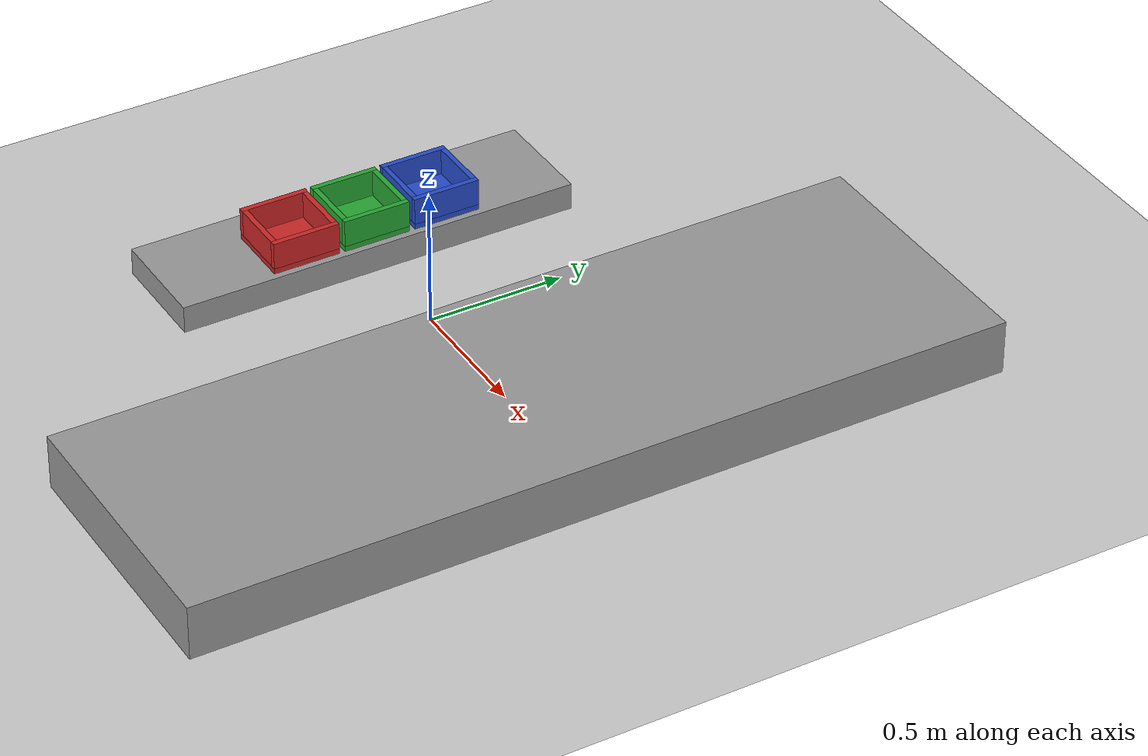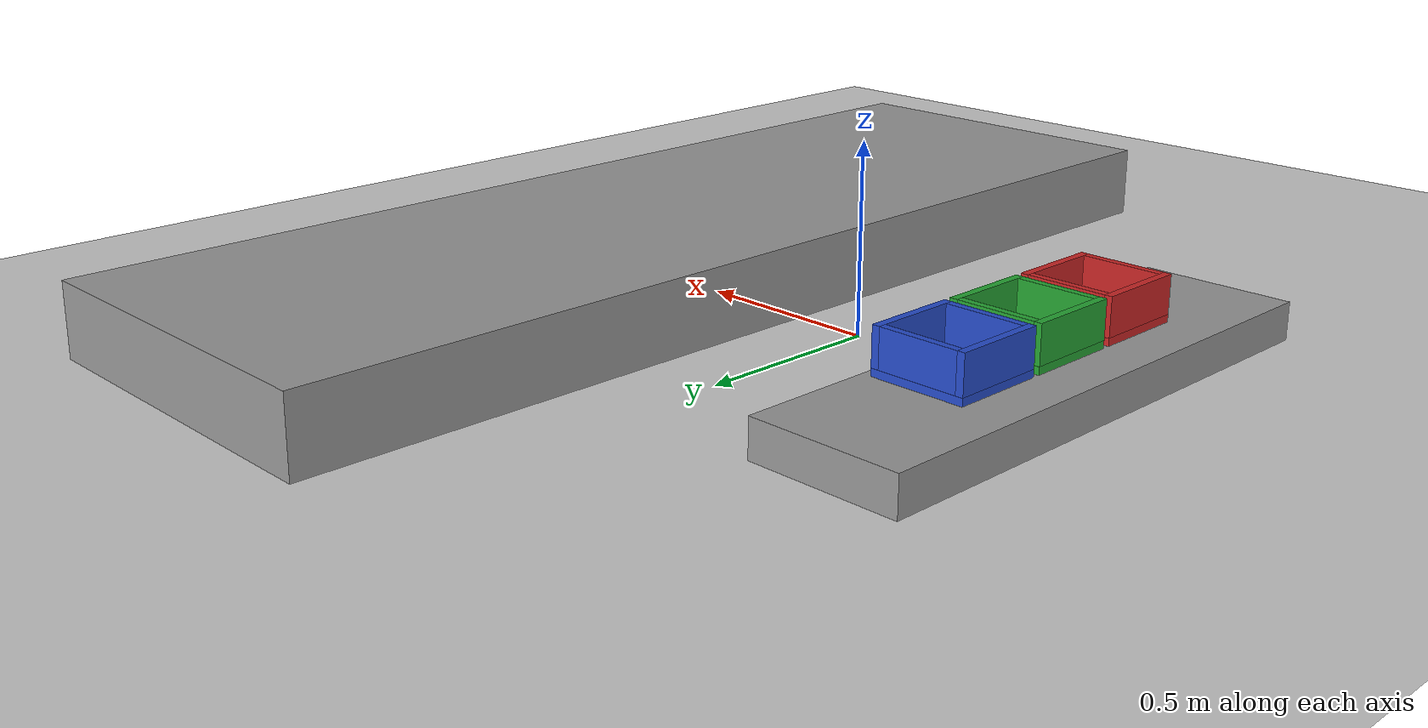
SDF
<sdf version="1.6">
 <world name="default">
  <plugin name="gazebo_ros_state" filename="libgazebo_ros_state.so">
   <ros>
    <namespace>/gazebo</namespace>
    <argument>model_states:=model_states_demo</argument>
    <argument>link_states:=link_states_demo</argument>
   </ros>
   <update_rate>1.0</update_rate>
  </plugin>
  <include><uri>model://sun</uri></include>
  <include><uri>model://ground_plane</uri></include>
  <include>
   <uri>/home/amir/School/robotics/robotic_arm_final/src/robotic_arm/models/workbench</uri>
   <pose>0.7 0 0.1 0 0 0</pose>
   <static>1</static>
  </include>
  <include>
   <uri>/home/amir/School/robotics/robotic_arm_final/src/robotic_arm/models/underbin_bench</uri>
   <pose>-0.55 0 0.05 0 0 0</pose>
   <static>1</static>
  </include>
  <include>
   <uri>/home/amir/School/robotics/robotic_arm_final/src/robotic_arm/models/bin_red</uri>
   <pose>-0.5 -0.27 0.11 0 0 0</pose>
   <static>1</static>
  </include>
  <include>
   <uri>/home/amir/School/robotics/robotic_arm_final/src/robotic_arm/models/bin_green</uri>
   <pose>-0.5 0 0.11 0 0 0</pose>
   <static>1</static>
  </include>
  <include>
   <uri>/home/amir/School/robotics/robotic_arm_final/src/robotic_arm/models/bin_blue</uri>
   <pose>-0.5 0.27 0.11 0 0 0</pose>
   <static>1</static>
  </include>
  <include>
   <uri>/home/amir/School/robotics/robotic_arm_final/src/robotic_arm/models/block_red</uri>
   <pose>0.4 -0.22 0.115 0 0 0</pose>
   <name>block_red_1</name>
  </include>
  <include>
   <uri>/home/amir/School/robotics/robotic_arm_final/src/robotic_arm/models/block_red</uri>
   <pose>0.4 0.22 0.115 0 0 0</pose>
   <name>block_red_2</name>
  </include>
  <include>
   <uri>/home/amir/School/robotics/robotic_arm_final/src/robotic_arm/models/block_blue</uri>
   <pose>0.6 0.22 0.115 0 0 0</pose>
   <name>block_blue_1</name>
  </include>
  <include>
   <uri>/home/amir/School/robotics/robotic_arm_final/src/robotic_arm/models/block_green</uri>
   <pose>0.45 0.0 0.115 0 0 0</pose>
   <name>block_green_1</name>
  </include>
 </world>
</sdf>

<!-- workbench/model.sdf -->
<sdf version='1.7'>
  <model name='workbench'>
    <link name='link_0'>
      <inertial>
        <mass>1</mass>
        <inertia>
          <ixx>0.166667</ixx>
          <ixy>0</ixy>
          <ixz>0</ixz>
          <iyy>0.166667</iyy>
          <iyz>0</iyz>
          <izz>0.166667</izz>
        </inertia>
        <pose>0 0 0 0 -0 0</pose>
      </inertial>
      <pose>-0 0 0 0 -0 0</pose>
      <gravity>1</gravity>
      <self_collide>0</self_collide>
      <kinematic>0</kinematic>
      <enable_wind>0</enable_wind>
      <visual name='visual'>
        <pose>0 0 0 0 -0 0</pose>
        <geometry>
          <box>
            <size>1.0 3 0.2</size>
          </box>
        </geometry>
        <material>
          <lighting>1</lighting>
          <script>
            <uri>/home/amir/School/robotics/robotic_arm_final/src/robotic_arm/models/gazebo.material</uri>
            <name>Gazebo/Grey</name>
          </script>
          <shader type='pixel'>
            <normal_map>__default__</normal_map>
          </shader>
          <ambient>0 0 0 1</ambient>
          <diffuse>0 0 0 1</diffuse>
          <specular>0.01 0.01 0.01 1</specular>
          <emissive>0 0 0 1</emissive>
        </material>
        <transparency>0</transparency>
        <cast_shadows>1</cast_shadows>
      </visual>
      <collision name='collision'>
        <laser_retro>0</laser_retro>
        <max_contacts>10</max_contacts>
        <pose>0 0 0 0 -0 0</pose>
        <geometry>
          <box>
            <size>1.0 3 0.2</size>
          </box>
        </geometry>
        <surface>
          <friction>
            <ode>
              <mu>1</mu>
              <mu2>1</mu2>
              <fdir1>0 0 0</fdir1>
              <slip1>0</slip1>
              <slip2>0</slip2>
            </ode>
            <torsional>
              <coefficient>1</coefficient>
              <patch_radius>0</patch_radius>
              <surface_radius>0</surface_radius>
              <use_patch_radius>1</use_patch_radius>
              <ode>
                <slip>0</slip>
              </ode>
            </torsional>
          </friction>
          <bounce>
            <restitution_coefficient>0</restitution_coefficient>
            <threshold>1e+06</threshold>
          </bounce>
          <contact>
            <collide_without_contact>0</collide_without_contact>
            <collide_without_contact_bitmask>1</collide_without_contact_bitmask>
            <collide_bitmask>1</collide_bitmask>
            <ode>
              <soft_cfm>0</soft_cfm>
              <soft_erp>0.2</soft_erp>
              <kp>1e+13</kp>
              <kd>1</kd>
              <max_vel>0.01</max_vel>
              <min_depth>0</min_depth>
            </ode>
            <bullet>
              <split_impulse>1</split_impulse>
              <split_impulse_penetration_threshold>-0.01</split_impulse_penetration_threshold>
              <soft_cfm>0</soft_cfm>
              <soft_erp>0.2</soft_erp>
              <kp>1e+13</kp>
              <kd>1</kd>
            </bullet>
          </contact>
        </surface>
      </collision>
    </link>
    <static>0</static>
    <allow_auto_disable>1</allow_auto_disable>
  </model>
</sdf>

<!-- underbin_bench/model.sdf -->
<sdf version='1.7'>
  <model name='underbin_bench'>
    <link name='link_0'>
      <inertial>
        <mass>1</mass>
        <inertia>
          <ixx>0.166667</ixx>
          <ixy>0</ixy>
          <ixz>0</ixz>
          <iyy>0.166667</iyy>
          <iyz>0</iyz>
          <izz>0.166667</izz>
        </inertia>
        <pose>0 0 0 0 -0 0</pose>
      </inertial>
      <pose>0 -0 -0 0 -0 0</pose>
      <gravity>1</gravity>
      <self_collide>0</self_collide>
      <kinematic>0</kinematic>
      <enable_wind>0</enable_wind>
      <visual name='visual'>
        <pose>0 0 0 0 -0 0</pose>
        <geometry>
          <box>
            <size>0.4 1.5 0.1</size>
          </box>
        </geometry>
        <material>
          <lighting>1</lighting>
          <script>
            <uri>/home/amir/School/robotics/robotic_arm_final/src/robotic_arm/models/gazebo.material</uri>
            <name>Gazebo/Grey</name>
          </script>
          <shader type='pixel'>
            <normal_map>__default__</normal_map>
          </shader>
          <ambient>0.3 0.3 0.3 1</ambient>
          <diffuse>0.7 0.7 0.7 1</diffuse>
          <specular>0.01 0.01 0.01 1</specular>
          <emissive>0 0 0 1</emissive>
        </material>
        <transparency>0</transparency>
        <cast_shadows>1</cast_shadows>
      </visual>
      <collision name='collision'>
        <laser_retro>0</laser_retro>
        <max_contacts>10</max_contacts>
        <pose>0 0 0 0 -0 0</pose>
        <geometry>
          <box>
            <size>0.4 1.5 0.1</size>
          </box>
        </geometry>
        <surface>
          <friction>
            <ode>
              <mu>1</mu>
              <mu2>1</mu2>
              <fdir1>0 0 0</fdir1>
              <slip1>0</slip1>
              <slip2>0</slip2>
            </ode>
            <torsional>
              <coefficient>1</coefficient>
              <patch_radius>0</patch_radius>
              <surface_radius>0</surface_radius>
              <use_patch_radius>1</use_patch_radius>
              <ode>
                <slip>0</slip>
              </ode>
            </torsional>
          </friction>
          <bounce>
            <restitution_coefficient>0</restitution_coefficient>
            <threshold>1e+06</threshold>
          </bounce>
          <contact>
            <collide_without_contact>0</collide_without_contact>
            <collide_without_contact_bitmask>1</collide_without_contact_bitmask>
            <collide_bitmask>1</collide_bitmask>
            <ode>
              <soft_cfm>0</soft_cfm>
              <soft_erp>0.2</soft_erp>
              <kp>1e+13</kp>
              <kd>1</kd>
              <max_vel>0.01</max_vel>
              <min_depth>0</min_depth>
            </ode>
            <bullet>
              <split_impulse>1</split_impulse>
              <split_impulse_penetration_threshold>-0.01</split_impulse_penetration_threshold>
              <soft_cfm>0</soft_cfm>
              <soft_erp>0.2</soft_erp>
              <kp>1e+13</kp>
              <kd>1</kd>
            </bullet>
          </contact>
        </surface>
      </collision>
    </link>
    <static>0</static>
    <allow_auto_disable>1</allow_auto_disable>
  </model>
</sdf>

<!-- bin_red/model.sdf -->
<sdf version='1.7'>
  <model name='bin_red'>
    <link name='link_0'>
      <inertial>
        <mass>1</mass>
        <inertia>
          <ixx>0.166667</ixx>
          <ixy>0</ixy>
          <ixz>0</ixz>
          <iyy>0.166667</iyy>
          <iyz>0</iyz>
          <izz>0.166667</izz>
        </inertia>
        <pose>0 0 0 0 -0 0</pose>
      </inertial>
      <pose>0 0 0 0 -0 0</pose>
      <gravity>1</gravity>
      <self_collide>0</self_collide>
      <kinematic>0</kinematic>
      <enable_wind>0</enable_wind>
      <visual name='visual'>
        <pose>0 0 0 0 -0 0</pose>
        <geometry>
          <box>
            <size>0.25 0.25 0.02</size>
          </box>
        </geometry>
        <material>
          <lighting>1</lighting>
          <script>
            <uri>/home/amir/School/robotics/robotic_arm_final/src/robotic_arm/models/gazebo.material</uri>
            <name>Gazebo/Red</name>
          </script>
          <shader type='pixel'>
            <normal_map>__default__</normal_map>
          </shader>
        </material>
        <transparency>0</transparency>
        <cast_shadows>1</cast_shadows>
      </visual>
      <collision name='collision'>
        <laser_retro>0</laser_retro>
        <max_contacts>10</max_contacts>
        <pose>0 0 0 0 -0 0</pose>
        <geometry>
          <box>
            <size>0.25 0.25 0.02</size>
          </box>
        </geometry>
        <surface>
          <friction>
            <ode>
              <mu>1</mu>
              <mu2>1</mu2>
              <fdir1>0 0 0</fdir1>
              <slip1>0</slip1>
              <slip2>0</slip2>
            </ode>
            <torsional>
              <coefficient>1</coefficient>
              <patch_radius>0</patch_radius>
              <surface_radius>0</surface_radius>
              <use_patch_radius>1</use_patch_radius>
              <ode>
                <slip>0</slip>
              </ode>
            </torsional>
          </friction>
          <bounce>
            <restitution_coefficient>0</restitution_coefficient>
            <threshold>1e+06</threshold>
          </bounce>
          <contact>
            <collide_without_contact>0</collide_without_contact>
            <collide_without_contact_bitmask>1</collide_without_contact_bitmask>
            <collide_bitmask>1</collide_bitmask>
            <ode>
              <soft_cfm>0</soft_cfm>
              <soft_erp>0.2</soft_erp>
              <kp>1e+13</kp>
              <kd>1</kd>
              <max_vel>0.01</max_vel>
              <min_depth>0</min_depth>
            </ode>
            <bullet>
              <split_impulse>1</split_impulse>
              <split_impulse_penetration_threshold>-0.01</split_impulse_penetration_threshold>
              <soft_cfm>0</soft_cfm>
              <soft_erp>0.2</soft_erp>
              <kp>1e+13</kp>
              <kd>1</kd>
            </bullet>
          </contact>
        </surface>
      </collision>
    </link>
    <link name='link_1'>
      <inertial>
        <mass>1</mass>
        <inertia>
          <ixx>0.166667</ixx>
          <ixy>0</ixy>
          <ixz>0</ixz>
          <iyy>0.166667</iyy>
          <iyz>0</iyz>
          <izz>0.166667</izz>
        </inertia>
        <pose>0 0 0 0 -0 0</pose>
      </inertial>
      <pose>-0.115 0 0.06 0 -0 0</pose>
      <gravity>1</gravity>
      <self_collide>0</self_collide>
      <kinematic>0</kinematic>
      <enable_wind>0</enable_wind>
      <visual name='visual'>
        <pose>0 0 0 0 -0 0</pose>
        <geometry>
          <box>
            <size>0.02 0.25 0.1</size>
          </box>
        </geometry>
        <material>
          <lighting>1</lighting>
          <script>
            <uri>/home/amir/School/robotics/robotic_arm_final/src/robotic_arm/models/gazebo.material</uri>
            <name>Gazebo/Red</name>
          </script>
          <shader type='pixel'>
            <normal_map>__default__</normal_map>
          </shader>
        </material>
        <transparency>0</transparency>
        <cast_shadows>1</cast_shadows>
      </visual>
      <collision name='collision'>
        <laser_retro>0</laser_retro>
        <max_contacts>10</max_contacts>
        <pose>0 0 0 0 -0 0</pose>
        <geometry>
          <box>
            <size>0.02 0.25 0.1</size>
          </box>
        </geometry>
        <surface>
          <friction>
            <ode>
              <mu>1</mu>
              <mu2>1</mu2>
              <fdir1>0 0 0</fdir1>
              <slip1>0</slip1>
              <slip2>0</slip2>
            </ode>
            <torsional>
              <coefficient>1</coefficient>
              <patch_radius>0</patch_radius>
              <surface_radius>0</surface_radius>
              <use_patch_radius>1</use_patch_radius>
              <ode>
                <slip>0</slip>
              </ode>
            </torsional>
          </friction>
          <bounce>
            <restitution_coefficient>0</restitution_coefficient>
            <threshold>1e+06</threshold>
          </bounce>
          <contact>
            <collide_without_contact>0</collide_without_contact>
            <collide_without_contact_bitmask>1</collide_without_contact_bitmask>
            <collide_bitmask>1</collide_bitmask>
            <ode>
              <soft_cfm>0</soft_cfm>
              <soft_erp>0.2</soft_erp>
              <kp>1e+13</kp>
              <kd>1</kd>
              <max_vel>0.01</max_vel>
              <min_depth>0</min_depth>
            </ode>
            <bullet>
              <split_impulse>1</split_impulse>
              <split_impulse_penetration_threshold>-0.01</split_impulse_penetration_threshold>
              <soft_cfm>0</soft_cfm>
              <soft_erp>0.2</soft_erp>
              <kp>1e+13</kp>
              <kd>1</kd>
            </bullet>
          </contact>
        </surface>
      </collision>
    </link>
    <link name='link_1_clone'>
      <inertial>
        <mass>1</mass>
        <inertia>
          <ixx>0.166667</ixx>
          <ixy>0</ixy>
          <ixz>0</ixz>
          <iyy>0.166667</iyy>
          <iyz>0</iyz>
          <izz>0.166667</izz>
        </inertia>
        <pose>0 0 0 0 -0 0</pose>
      </inertial>
      <pose>0.115 0 0.06 0 -0 0</pose>
      <gravity>1</gravity>
      <self_collide>0</self_collide>
      <kinematic>0</kinematic>
      <enable_wind>0</enable_wind>
      <visual name='visual'>
        <pose>0 0 0 0 -0 0</pose>
        <geometry>
          <box>
            <size>0.02 0.25 0.1</size>
          </box>
        </geometry>
        <material>
          <lighting>1</lighting>
          <script>
            <uri>/home/amir/School/robotics/robotic_arm_final/src/robotic_arm/models/gazebo.material</uri>
            <name>Gazebo/Red</name>
          </script>
          <shader type='pixel'>
            <normal_map>__default__</normal_map>
          </shader>
        </material>
        <transparency>0</transparency>
        <cast_shadows>1</cast_shadows>
      </visual>
      <collision name='collision'>
        <laser_retro>0</laser_retro>
        <max_contacts>10</max_contacts>
        <pose>0 0 0 0 -0 0</pose>
        <geometry>
          <box>
            <size>0.02 0.25 0.1</size>
          </box>
        </geometry>
        <surface>
          <friction>
            <ode>
              <mu>1</mu>
              <mu2>1</mu2>
              <fdir1>0 0 0</fdir1>
              <slip1>0</slip1>
              <slip2>0</slip2>
            </ode>
            <torsional>
              <coefficient>1</coefficient>
              <patch_radius>0</patch_radius>
              <surface_radius>0</surface_radius>
              <use_patch_radius>1</use_patch_radius>
              <ode>
                <slip>0</slip>
              </ode>
            </torsional>
          </friction>
          <bounce>
            <restitution_coefficient>0</restitution_coefficient>
            <threshold>1e+06</threshold>
          </bounce>
          <contact>
            <collide_without_contact>0</collide_without_contact>
            <collide_without_contact_bitmask>1</collide_without_contact_bitmask>
            <collide_bitmask>1</collide_bitmask>
            <ode>
              <soft_cfm>0</soft_cfm>
              <soft_erp>0.2</soft_erp>
              <kp>1e+13</kp>
              <kd>1</kd>
              <max_vel>0.01</max_vel>
              <min_depth>0</min_depth>
            </ode>
            <bullet>
              <split_impulse>1</split_impulse>
              <split_impulse_penetration_threshold>-0.01</split_impulse_penetration_threshold>
              <soft_cfm>0</soft_cfm>
              <soft_erp>0.2</soft_erp>
              <kp>1e+13</kp>
              <kd>1</kd>
            </bullet>
          </contact>
        </surface>
      </collision>
    </link>
    <link name='link_2'>
      <inertial>
        <mass>1</mass>
        <inertia>
          <ixx>0.166667</ixx>
          <ixy>0</ixy>
          <ixz>0</ixz>
          <iyy>0.166667</iyy>
          <iyz>0</iyz>
          <izz>0.166667</izz>
        </inertia>
        <pose>0 0 0 0 -0 0</pose>
      </inertial>
      <pose>0 -0.115 0.06 0 -0 0</pose>
      <gravity>1</gravity>
      <self_collide>0</self_collide>
      <kinematic>0</kinematic>
      <enable_wind>0</enable_wind>
      <visual name='visual'>
        <pose>0 0 0 0 -0 0</pose>
        <geometry>
          <box>
            <size>0.21 0.02 0.1</size>
          </box>
        </geometry>
        <material>
          <lighting>1</lighting>
          <script>
            <uri>/home/amir/School/robotics/robotic_arm_final/src/robotic_arm/models/gazebo.material</uri>
            <name>Gazebo/Red</name>
          </script>
          <shader type='pixel'>
            <normal_map>__default__</normal_map>
          </shader>
        </material>
        <transparency>0</transparency>
        <cast_shadows>1</cast_shadows>
      </visual>
      <collision name='collision'>
        <laser_retro>0</laser_retro>
        <max_contacts>10</max_contacts>
        <pose>0 0 0 0 -0 0</pose>
        <geometry>
          <box>
            <size>0.21 0.02 0.1</size>
          </box>
        </geometry>
        <surface>
          <friction>
            <ode>
              <mu>1</mu>
              <mu2>1</mu2>
              <fdir1>0 0 0</fdir1>
              <slip1>0</slip1>
              <slip2>0</slip2>
            </ode>
            <torsional>
              <coefficient>1</coefficient>
              <patch_radius>0</patch_radius>
              <surface_radius>0</surface_radius>
              <use_patch_radius>1</use_patch_radius>
              <ode>
                <slip>0</slip>
              </ode>
            </torsional>
          </friction>
          <bounce>
            <restitution_coefficient>0</restitution_coefficient>
            <threshold>1e+06</threshold>
          </bounce>
          <contact>
            <collide_without_contact>0</collide_without_contact>
            <collide_without_contact_bitmask>1</collide_without_contact_bitmask>
            <collide_bitmask>1</collide_bitmask>
            <ode>
              <soft_cfm>0</soft_cfm>
              <soft_erp>0.2</soft_erp>
              <kp>1e+13</kp>
              <kd>1</kd>
              <max_vel>0.01</max_vel>
              <min_depth>0</min_depth>
            </ode>
            <bullet>
              <split_impulse>1</split_impulse>
              <split_impulse_penetration_threshold>-0.01</split_impulse_penetration_threshold>
              <soft_cfm>0</soft_cfm>
              <soft_erp>0.2</soft_erp>
              <kp>1e+13</kp>
              <kd>1</kd>
            </bullet>
          </contact>
        </surface>
      </collision>
    </link>
    <link name='link_2_clone'>
      <inertial>
        <mass>1</mass>
        <inertia>
          <ixx>0.166667</ixx>
          <ixy>0</ixy>
          <ixz>0</ixz>
          <iyy>0.166667</iyy>
          <iyz>0</iyz>
          <izz>0.166667</izz>
        </inertia>
        <pose>0 0 0 0 -0 0</pose>
      </inertial>
      <pose>0 0.115 0.06 0 -0 0</pose>
      <gravity>1</gravity>
      <self_collide>0</self_collide>
      <kinematic>0</kinematic>
      <enable_wind>0</enable_wind>
      <visual name='visual'>
        <pose>0 0 0 0 -0 0</pose>
        <geometry>
          <box>
            <size>0.21 0.02 0.1</size>
          </box>
        </geometry>
        <material>
          <lighting>1</lighting>
          <script>
            <uri>/home/amir/School/robotics/robotic_arm_final/src/robotic_arm/models/gazebo.material</uri>
            <name>Gazebo/Red</name>
          </script>
          <shader type='pixel'>
            <normal_map>__default__</normal_map>
          </shader>
        </material>
        <transparency>0</transparency>
        <cast_shadows>1</cast_shadows>
      </visual>
      <collision name='collision'>
        <laser_retro>0</laser_retro>
        <max_contacts>10</max_contacts>
        <pose>0 0 0 0 -0 0</pose>
        <geometry>
          <box>
            <size>0.21 0.02 0.1</size>
          </box>
        </geometry>
        <surface>
          <friction>
            <ode>
              <mu>1</mu>
              <mu2>1</mu2>
              <fdir1>0 0 0</fdir1>
              <slip1>0</slip1>
              <slip2>0</slip2>
            </ode>
            <torsional>
              <coefficient>1</coefficient>
              <patch_radius>0</patch_radius>
              <surface_radius>0</surface_radius>
              <use_patch_radius>1</use_patch_radius>
              <ode>
                <slip>0</slip>
              </ode>
            </torsional>
          </friction>
          <bounce>
            <restitution_coefficient>0</restitution_coefficient>
            <threshold>1e+06</threshold>
          </bounce>
          <contact>
            <collide_without_contact>0</collide_without_contact>
            <collide_without_contact_bitmask>1</collide_without_contact_bitmask>
            <collide_bitmask>1</collide_bitmask>
            <ode>
              <soft_cfm>0</soft_cfm>
              <soft_erp>0.2</soft_erp>
              <kp>1e+13</kp>
              <kd>1</kd>
              <max_vel>0.01</max_vel>
              <min_depth>0</min_depth>
            </ode>
            <bullet>
              <split_impulse>1</split_impulse>
              <split_impulse_penetration_threshold>-0.01</split_impulse_penetration_threshold>
              <soft_cfm>0</soft_cfm>
              <soft_erp>0.2</soft_erp>
              <kp>1e+13</kp>
              <kd>1</kd>
            </bullet>
          </contact>
        </surface>
      </collision>
    </link>
    <static>0</static>
    <allow_auto_disable>1</allow_auto_disable>
  </model>
</sdf>

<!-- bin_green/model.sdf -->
<sdf version='1.7'>
  <model name='bin_green'>
    <link name='link_0'>
      <inertial>
        <mass>1</mass>
        <inertia>
          <ixx>0.166667</ixx>
          <ixy>0</ixy>
          <ixz>0</ixz>
          <iyy>0.166667</iyy>
          <iyz>0</iyz>
          <izz>0.166667</izz>
        </inertia>
        <pose>0 0 0 0 -0 0</pose>
      </inertial>
      <pose>0 0 0 0 -0 0</pose>
      <gravity>1</gravity>
      <self_collide>0</self_collide>
      <kinematic>0</kinematic>
      <enable_wind>0</enable_wind>
      <visual name='visual'>
        <pose>0 0 0 0 -0 0</pose>
        <geometry>
          <box>
            <size>0.25 0.25 0.02</size>
          </box>
        </geometry>
        <material>
          <lighting>1</lighting>
          <script>
            <uri>/home/amir/School/robotics/robotic_arm_final/src/robotic_arm/models/gazebo.material</uri>
            <name>Gazebo/Green</name>
          </script>
          <shader type='pixel'>
            <normal_map>__default__</normal_map>
          </shader>
        </material>
        <transparency>0</transparency>
        <cast_shadows>1</cast_shadows>
      </visual>
      <collision name='collision'>
        <laser_retro>0</laser_retro>
        <max_contacts>10</max_contacts>
        <pose>0 0 0 0 -0 0</pose>
        <geometry>
          <box>
            <size>0.25 0.25 0.02</size>
          </box>
        </geometry>
        <surface>
          <friction>
            <ode>
              <mu>1</mu>
              <mu2>1</mu2>
              <fdir1>0 0 0</fdir1>
              <slip1>0</slip1>
              <slip2>0</slip2>
            </ode>
            <torsional>
              <coefficient>1</coefficient>
              <patch_radius>0</patch_radius>
              <surface_radius>0</surface_radius>
              <use_patch_radius>1</use_patch_radius>
              <ode>
                <slip>0</slip>
              </ode>
            </torsional>
          </friction>
          <bounce>
            <restitution_coefficient>0</restitution_coefficient>
            <threshold>1e+06</threshold>
          </bounce>
          <contact>
            <collide_without_contact>0</collide_without_contact>
            <collide_without_contact_bitmask>1</collide_without_contact_bitmask>
            <collide_bitmask>1</collide_bitmask>
            <ode>
              <soft_cfm>0</soft_cfm>
              <soft_erp>0.2</soft_erp>
              <kp>1e+13</kp>
              <kd>1</kd>
              <max_vel>0.01</max_vel>
              <min_depth>0</min_depth>
            </ode>
            <bullet>
              <split_impulse>1</split_impulse>
              <split_impulse_penetration_threshold>-0.01</split_impulse_penetration_threshold>
              <soft_cfm>0</soft_cfm>
              <soft_erp>0.2</soft_erp>
              <kp>1e+13</kp>
              <kd>1</kd>
            </bullet>
          </contact>
        </surface>
      </collision>
    </link>
    <link name='link_1'>
      <inertial>
        <mass>1</mass>
        <inertia>
          <ixx>0.166667</ixx>
          <ixy>0</ixy>
          <ixz>0</ixz>
          <iyy>0.166667</iyy>
          <iyz>0</iyz>
          <izz>0.166667</izz>
        </inertia>
        <pose>0 0 0 0 -0 0</pose>
      </inertial>
      <pose>-0.115 0 0.06 0 -0 0</pose>
      <gravity>1</gravity>
      <self_collide>0</self_collide>
      <kinematic>0</kinematic>
      <enable_wind>0</enable_wind>
      <visual name='visual'>
        <pose>0 0 0 0 -0 0</pose>
        <geometry>
          <box>
            <size>0.02 0.25 0.1</size>
          </box>
        </geometry>
        <material>
          <lighting>1</lighting>
          <script>
            <uri>/home/amir/School/robotics/robotic_arm_final/src/robotic_arm/models/gazebo.material</uri>
            <name>Gazebo/Green</name>
          </script>
          <shader type='pixel'>
            <normal_map>__default__</normal_map>
          </shader>
        </material>
        <transparency>0</transparency>
        <cast_shadows>1</cast_shadows>
      </visual>
      <collision name='collision'>
        <laser_retro>0</laser_retro>
        <max_contacts>10</max_contacts>
        <pose>0 0 0 0 -0 0</pose>
        <geometry>
          <box>
            <size>0.02 0.25 0.1</size>
          </box>
        </geometry>
        <surface>
          <friction>
            <ode>
              <mu>1</mu>
              <mu2>1</mu2>
              <fdir1>0 0 0</fdir1>
              <slip1>0</slip1>
              <slip2>0</slip2>
            </ode>
            <torsional>
              <coefficient>1</coefficient>
              <patch_radius>0</patch_radius>
              <surface_radius>0</surface_radius>
              <use_patch_radius>1</use_patch_radius>
              <ode>
                <slip>0</slip>
              </ode>
            </torsional>
          </friction>
          <bounce>
            <restitution_coefficient>0</restitution_coefficient>
            <threshold>1e+06</threshold>
          </bounce>
          <contact>
            <collide_without_contact>0</collide_without_contact>
            <collide_without_contact_bitmask>1</collide_without_contact_bitmask>
            <collide_bitmask>1</collide_bitmask>
            <ode>
              <soft_cfm>0</soft_cfm>
              <soft_erp>0.2</soft_erp>
              <kp>1e+13</kp>
              <kd>1</kd>
              <max_vel>0.01</max_vel>
              <min_depth>0</min_depth>
            </ode>
            <bullet>
              <split_impulse>1</split_impulse>
              <split_impulse_penetration_threshold>-0.01</split_impulse_penetration_threshold>
              <soft_cfm>0</soft_cfm>
              <soft_erp>0.2</soft_erp>
              <kp>1e+13</kp>
              <kd>1</kd>
            </bullet>
          </contact>
        </surface>
      </collision>
    </link>
    <link name='link_1_clone'>
      <inertial>
        <mass>1</mass>
        <inertia>
          <ixx>0.166667</ixx>
          <ixy>0</ixy>
          <ixz>0</ixz>
          <iyy>0.166667</iyy>
          <iyz>0</iyz>
          <izz>0.166667</izz>
        </inertia>
        <pose>0 0 0 0 -0 0</pose>
      </inertial>
      <pose>0.115 0 0.06 0 -0 0</pose>
      <gravity>1</gravity>
      <self_collide>0</self_collide>
      <kinematic>0</kinematic>
      <enable_wind>0</enable_wind>
      <visual name='visual'>
        <pose>0 0 0 0 -0 0</pose>
        <geometry>
          <box>
            <size>0.02 0.25 0.1</size>
          </box>
        </geometry>
        <material>
          <lighting>1</lighting>
          <script>
            <uri>/home/amir/School/robotics/robotic_arm_final/src/robotic_arm/models/gazebo.material</uri>
            <name>Gazebo/Green</name>
          </script>
          <shader type='pixel'>
            <normal_map>__default__</normal_map>
          </shader>
        </material>
        <transparency>0</transparency>
        <cast_shadows>1</cast_shadows>
      </visual>
      <collision name='collision'>
        <laser_retro>0</laser_retro>
        <max_contacts>10</max_contacts>
        <pose>0 0 0 0 -0 0</pose>
        <geometry>
          <box>
            <size>0.02 0.25 0.1</size>
          </box>
        </geometry>
        <surface>
          <friction>
            <ode>
              <mu>1</mu>
              <mu2>1</mu2>
              <fdir1>0 0 0</fdir1>
              <slip1>0</slip1>
              <slip2>0</slip2>
            </ode>
            <torsional>
              <coefficient>1</coefficient>
              <patch_radius>0</patch_radius>
              <surface_radius>0</surface_radius>
              <use_patch_radius>1</use_patch_radius>
              <ode>
                <slip>0</slip>
              </ode>
            </torsional>
          </friction>
          <bounce>
            <restitution_coefficient>0</restitution_coefficient>
            <threshold>1e+06</threshold>
          </bounce>
          <contact>
            <collide_without_contact>0</collide_without_contact>
            <collide_without_contact_bitmask>1</collide_without_contact_bitmask>
            <collide_bitmask>1</collide_bitmask>
            <ode>
              <soft_cfm>0</soft_cfm>
              <soft_erp>0.2</soft_erp>
              <kp>1e+13</kp>
              <kd>1</kd>
              <max_vel>0.01</max_vel>
              <min_depth>0</min_depth>
            </ode>
            <bullet>
              <split_impulse>1</split_impulse>
              <split_impulse_penetration_threshold>-0.01</split_impulse_penetration_threshold>
              <soft_cfm>0</soft_cfm>
              <soft_erp>0.2</soft_erp>
              <kp>1e+13</kp>
              <kd>1</kd>
            </bullet>
          </contact>
        </surface>
      </collision>
    </link>
    <link name='link_2'>
      <inertial>
        <mass>1</mass>
        <inertia>
          <ixx>0.166667</ixx>
          <ixy>0</ixy>
          <ixz>0</ixz>
          <iyy>0.166667</iyy>
          <iyz>0</iyz>
          <izz>0.166667</izz>
        </inertia>
        <pose>0 0 0 0 -0 0</pose>
      </inertial>
      <pose>0 -0.115 0.06 0 -0 0</pose>
      <gravity>1</gravity>
      <self_collide>0</self_collide>
      <kinematic>0</kinematic>
      <enable_wind>0</enable_wind>
      <visual name='visual'>
        <pose>0 0 0 0 -0 0</pose>
        <geometry>
          <box>
            <size>0.21 0.02 0.1</size>
          </box>
        </geometry>
        <material>
          <lighting>1</lighting>
          <script>
            <uri>/home/amir/School/robotics/robotic_arm_final/src/robotic_arm/models/gazebo.material</uri>
            <name>Gazebo/Green</name>
          </script>
          <shader type='pixel'>
            <normal_map>__default__</normal_map>
          </shader>
        </material>
        <transparency>0</transparency>
        <cast_shadows>1</cast_shadows>
      </visual>
      <collision name='collision'>
        <laser_retro>0</laser_retro>
        <max_contacts>10</max_contacts>
        <pose>0 0 0 0 -0 0</pose>
        <geometry>
          <box>
            <size>0.21 0.02 0.1</size>
          </box>
        </geometry>
        <surface>
          <friction>
            <ode>
              <mu>1</mu>
              <mu2>1</mu2>
              <fdir1>0 0 0</fdir1>
              <slip1>0</slip1>
              <slip2>0</slip2>
            </ode>
            <torsional>
              <coefficient>1</coefficient>
              <patch_radius>0</patch_radius>
              <surface_radius>0</surface_radius>
              <use_patch_radius>1</use_patch_radius>
              <ode>
                <slip>0</slip>
              </ode>
            </torsional>
          </friction>
          <bounce>
            <restitution_coefficient>0</restitution_coefficient>
            <threshold>1e+06</threshold>
          </bounce>
          <contact>
            <collide_without_contact>0</collide_without_contact>
            <collide_without_contact_bitmask>1</collide_without_contact_bitmask>
            <collide_bitmask>1</collide_bitmask>
            <ode>
              <soft_cfm>0</soft_cfm>
              <soft_erp>0.2</soft_erp>
              <kp>1e+13</kp>
              <kd>1</kd>
              <max_vel>0.01</max_vel>
              <min_depth>0</min_depth>
            </ode>
            <bullet>
              <split_impulse>1</split_impulse>
              <split_impulse_penetration_threshold>-0.01</split_impulse_penetration_threshold>
              <soft_cfm>0</soft_cfm>
              <soft_erp>0.2</soft_erp>
              <kp>1e+13</kp>
              <kd>1</kd>
            </bullet>
          </contact>
        </surface>
      </collision>
    </link>
    <link name='link_2_clone'>
      <inertial>
        <mass>1</mass>
        <inertia>
          <ixx>0.166667</ixx>
          <ixy>0</ixy>
          <ixz>0</ixz>
          <iyy>0.166667</iyy>
          <iyz>0</iyz>
          <izz>0.166667</izz>
        </inertia>
        <pose>0 0 0 0 -0 0</pose>
      </inertial>
      <pose>0 0.115 0.06 0 -0 0</pose>
      <gravity>1</gravity>
      <self_collide>0</self_collide>
      <kinematic>0</kinematic>
      <enable_wind>0</enable_wind>
      <visual name='visual'>
        <pose>0 0 0 0 -0 0</pose>
        <geometry>
          <box>
            <size>0.21 0.02 0.1</size>
          </box>
        </geometry>
        <material>
          <lighting>1</lighting>
          <script>
            <uri>/home/amir/School/robotics/robotic_arm_final/src/robotic_arm/models/gazebo.material</uri>
            <name>Gazebo/Green</name>
          </script>
          <shader type='pixel'>
            <normal_map>__default__</normal_map>
          </shader>
        </material>
        <transparency>0</transparency>
        <cast_shadows>1</cast_shadows>
      </visual>
      <collision name='collision'>
        <laser_retro>0</laser_retro>
        <max_contacts>10</max_contacts>
        <pose>0 0 0 0 -0 0</pose>
        <geometry>
          <box>
            <size>0.21 0.02 0.1</size>
          </box>
        </geometry>
        <surface>
          <friction>
            <ode>
              <mu>1</mu>
              <mu2>1</mu2>
              <fdir1>0 0 0</fdir1>
              <slip1>0</slip1>
              <slip2>0</slip2>
            </ode>
            <torsional>
              <coefficient>1</coefficient>
              <patch_radius>0</patch_radius>
              <surface_radius>0</surface_radius>
              <use_patch_radius>1</use_patch_radius>
              <ode>
                <slip>0</slip>
              </ode>
            </torsional>
          </friction>
          <bounce>
            <restitution_coefficient>0</restitution_coefficient>
            <threshold>1e+06</threshold>
          </bounce>
          <contact>
            <collide_without_contact>0</collide_without_contact>
            <collide_without_contact_bitmask>1</collide_without_contact_bitmask>
            <collide_bitmask>1</collide_bitmask>
            <ode>
              <soft_cfm>0</soft_cfm>
              <soft_erp>0.2</soft_erp>
              <kp>1e+13</kp>
              <kd>1</kd>
              <max_vel>0.01</max_vel>
              <min_depth>0</min_depth>
            </ode>
            <bullet>
              <split_impulse>1</split_impulse>
              <split_impulse_penetration_threshold>-0.01</split_impulse_penetration_threshold>
              <soft_cfm>0</soft_cfm>
              <soft_erp>0.2</soft_erp>
              <kp>1e+13</kp>
              <kd>1</kd>
            </bullet>
          </contact>
        </surface>
      </collision>
    </link>
    <static>0</static>
    <allow_auto_disable>1</allow_auto_disable>
  </model>
</sdf>

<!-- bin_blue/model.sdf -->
<sdf version='1.7'>
  <model name='bin_blue'>
    <link name='link_0'>
      <inertial>
        <mass>1</mass>
        <inertia>
          <ixx>0.166667</ixx>
          <ixy>0</ixy>
          <ixz>0</ixz>
          <iyy>0.166667</iyy>
          <iyz>0</iyz>
          <izz>0.166667</izz>
        </inertia>
        <pose>0 0 0 0 -0 0</pose>
      </inertial>
      <pose>0 0 0 0 -0 0</pose>
      <gravity>1</gravity>
      <self_collide>0</self_collide>
      <kinematic>0</kinematic>
      <enable_wind>0</enable_wind>
      <visual name='visual'>
        <pose>0 0 0 0 -0 0</pose>
        <geometry>
          <box>
            <size>0.25 0.25 0.02</size>
          </box>
        </geometry>
        <material>
          <lighting>1</lighting>
          <script>
            <uri>/home/amir/School/robotics/robotic_arm_final/src/robotic_arm/models/gazebo.material</uri>
            <name>Gazebo/Blue</name>
          </script>
          <shader type='pixel'>
            <normal_map>__default__</normal_map>
          </shader>
        </material>
        <transparency>0</transparency>
        <cast_shadows>1</cast_shadows>
      </visual>
      <collision name='collision'>
        <laser_retro>0</laser_retro>
        <max_contacts>10</max_contacts>
        <pose>0 0 0 0 -0 0</pose>
        <geometry>
          <box>
            <size>0.25 0.25 0.02</size>
          </box>
        </geometry>
        <surface>
          <friction>
            <ode>
              <mu>1</mu>
              <mu2>1</mu2>
              <fdir1>0 0 0</fdir1>
              <slip1>0</slip1>
              <slip2>0</slip2>
            </ode>
            <torsional>
              <coefficient>1</coefficient>
              <patch_radius>0</patch_radius>
              <surface_radius>0</surface_radius>
              <use_patch_radius>1</use_patch_radius>
              <ode>
                <slip>0</slip>
              </ode>
            </torsional>
          </friction>
          <bounce>
            <restitution_coefficient>0</restitution_coefficient>
            <threshold>1e+06</threshold>
          </bounce>
          <contact>
            <collide_without_contact>0</collide_without_contact>
            <collide_without_contact_bitmask>1</collide_without_contact_bitmask>
            <collide_bitmask>1</collide_bitmask>
            <ode>
              <soft_cfm>0</soft_cfm>
              <soft_erp>0.2</soft_erp>
              <kp>1e+13</kp>
              <kd>1</kd>
              <max_vel>0.01</max_vel>
              <min_depth>0</min_depth>
            </ode>
            <bullet>
              <split_impulse>1</split_impulse>
              <split_impulse_penetration_threshold>-0.01</split_impulse_penetration_threshold>
              <soft_cfm>0</soft_cfm>
              <soft_erp>0.2</soft_erp>
              <kp>1e+13</kp>
              <kd>1</kd>
            </bullet>
          </contact>
        </surface>
      </collision>
    </link>
    <link name='link_1'>
      <inertial>
        <mass>1</mass>
        <inertia>
          <ixx>0.166667</ixx>
          <ixy>0</ixy>
          <ixz>0</ixz>
          <iyy>0.166667</iyy>
          <iyz>0</iyz>
          <izz>0.166667</izz>
        </inertia>
        <pose>0 0 0 0 -0 0</pose>
      </inertial>
      <pose>-0.115 0 0.06 0 -0 0</pose>
      <gravity>1</gravity>
      <self_collide>0</self_collide>
      <kinematic>0</kinematic>
      <enable_wind>0</enable_wind>
      <visual name='visual'>
        <pose>0 0 0 0 -0 0</pose>
        <geometry>
          <box>
            <size>0.02 0.25 0.1</size>
          </box>
        </geometry>
        <material>
          <lighting>1</lighting>
          <script>
            <uri>/home/amir/School/robotics/robotic_arm_final/src/robotic_arm/models/gazebo.material</uri>
            <name>Gazebo/Blue</name>
          </script>
          <shader type='pixel'>
            <normal_map>__default__</normal_map>
          </shader>
        </material>
        <transparency>0</transparency>
        <cast_shadows>1</cast_shadows>
      </visual>
      <collision name='collision'>
        <laser_retro>0</laser_retro>
        <max_contacts>10</max_contacts>
        <pose>0 0 0 0 -0 0</pose>
        <geometry>
          <box>
            <size>0.02 0.25 0.1</size>
          </box>
        </geometry>
        <surface>
          <friction>
            <ode>
              <mu>1</mu>
              <mu2>1</mu2>
              <fdir1>0 0 0</fdir1>
              <slip1>0</slip1>
              <slip2>0</slip2>
            </ode>
            <torsional>
              <coefficient>1</coefficient>
              <patch_radius>0</patch_radius>
              <surface_radius>0</surface_radius>
              <use_patch_radius>1</use_patch_radius>
              <ode>
                <slip>0</slip>
              </ode>
            </torsional>
          </friction>
          <bounce>
            <restitution_coefficient>0</restitution_coefficient>
            <threshold>1e+06</threshold>
          </bounce>
          <contact>
            <collide_without_contact>0</collide_without_contact>
            <collide_without_contact_bitmask>1</collide_without_contact_bitmask>
            <collide_bitmask>1</collide_bitmask>
            <ode>
              <soft_cfm>0</soft_cfm>
              <soft_erp>0.2</soft_erp>
              <kp>1e+13</kp>
              <kd>1</kd>
              <max_vel>0.01</max_vel>
              <min_depth>0</min_depth>
            </ode>
            <bullet>
              <split_impulse>1</split_impulse>
              <split_impulse_penetration_threshold>-0.01</split_impulse_penetration_threshold>
              <soft_cfm>0</soft_cfm>
              <soft_erp>0.2</soft_erp>
              <kp>1e+13</kp>
              <kd>1</kd>
            </bullet>
          </contact>
        </surface>
      </collision>
    </link>
    <link name='link_1_clone'>
      <inertial>
        <mass>1</mass>
        <inertia>
          <ixx>0.166667</ixx>
          <ixy>0</ixy>
          <ixz>0</ixz>
          <iyy>0.166667</iyy>
          <iyz>0</iyz>
          <izz>0.166667</izz>
        </inertia>
        <pose>0 0 0 0 -0 0</pose>
      </inertial>
      <pose>0.115 0 0.06 0 -0 0</pose>
      <gravity>1</gravity>
      <self_collide>0</self_collide>
      <kinematic>0</kinematic>
      <enable_wind>0</enable_wind>
      <visual name='visual'>
        <pose>0 0 0 0 -0 0</pose>
        <geometry>
          <box>
            <size>0.02 0.25 0.1</size>
          </box>
        </geometry>
        <material>
          <lighting>1</lighting>
          <script>
            <uri>/home/amir/School/robotics/robotic_arm_final/src/robotic_arm/models/gazebo.material</uri>
            <name>Gazebo/Blue</name>
          </script>
          <shader type='pixel'>
            <normal_map>__default__</normal_map>
          </shader>
        </material>
        <transparency>0</transparency>
        <cast_shadows>1</cast_shadows>
      </visual>
      <collision name='collision'>
        <laser_retro>0</laser_retro>
        <max_contacts>10</max_contacts>
        <pose>0 0 0 0 -0 0</pose>
        <geometry>
          <box>
            <size>0.02 0.25 0.1</size>
          </box>
        </geometry>
        <surface>
          <friction>
            <ode>
              <mu>1</mu>
              <mu2>1</mu2>
              <fdir1>0 0 0</fdir1>
              <slip1>0</slip1>
              <slip2>0</slip2>
            </ode>
            <torsional>
              <coefficient>1</coefficient>
              <patch_radius>0</patch_radius>
              <surface_radius>0</surface_radius>
              <use_patch_radius>1</use_patch_radius>
              <ode>
                <slip>0</slip>
              </ode>
            </torsional>
          </friction>
          <bounce>
            <restitution_coefficient>0</restitution_coefficient>
            <threshold>1e+06</threshold>
          </bounce>
          <contact>
            <collide_without_contact>0</collide_without_contact>
            <collide_without_contact_bitmask>1</collide_without_contact_bitmask>
            <collide_bitmask>1</collide_bitmask>
            <ode>
              <soft_cfm>0</soft_cfm>
              <soft_erp>0.2</soft_erp>
              <kp>1e+13</kp>
              <kd>1</kd>
              <max_vel>0.01</max_vel>
              <min_depth>0</min_depth>
            </ode>
            <bullet>
              <split_impulse>1</split_impulse>
              <split_impulse_penetration_threshold>-0.01</split_impulse_penetration_threshold>
              <soft_cfm>0</soft_cfm>
              <soft_erp>0.2</soft_erp>
              <kp>1e+13</kp>
              <kd>1</kd>
            </bullet>
          </contact>
        </surface>
      </collision>
    </link>
    <link name='link_2'>
      <inertial>
        <mass>1</mass>
        <inertia>
          <ixx>0.166667</ixx>
          <ixy>0</ixy>
          <ixz>0</ixz>
          <iyy>0.166667</iyy>
          <iyz>0</iyz>
          <izz>0.166667</izz>
        </inertia>
        <pose>0 0 0 0 -0 0</pose>
      </inertial>
      <pose>0 -0.115 0.06 0 -0 0</pose>
      <gravity>1</gravity>
      <self_collide>0</self_collide>
      <kinematic>0</kinematic>
      <enable_wind>0</enable_wind>
      <visual name='visual'>
        <pose>0 0 0 0 -0 0</pose>
        <geometry>
          <box>
            <size>0.21 0.02 0.1</size>
          </box>
        </geometry>
        <material>
          <lighting>1</lighting>
          <script>
            <uri>/home/amir/School/robotics/robotic_arm_final/src/robotic_arm/models/gazebo.material</uri>
            <name>Gazebo/Blue</name>
          </script>
          <shader type='pixel'>
            <normal_map>__default__</normal_map>
          </shader>
        </material>
        <transparency>0</transparency>
        <cast_shadows>1</cast_shadows>
      </visual>
      <collision name='collision'>
        <laser_retro>0</laser_retro>
        <max_contacts>10</max_contacts>
        <pose>0 0 0 0 -0 0</pose>
        <geometry>
          <box>
            <size>0.21 0.02 0.1</size>
          </box>
        </geometry>
        <surface>
          <friction>
            <ode>
              <mu>1</mu>
              <mu2>1</mu2>
              <fdir1>0 0 0</fdir1>
              <slip1>0</slip1>
              <slip2>0</slip2>
            </ode>
            <torsional>
              <coefficient>1</coefficient>
              <patch_radius>0</patch_radius>
              <surface_radius>0</surface_radius>
              <use_patch_radius>1</use_patch_radius>
              <ode>
                <slip>0</slip>
              </ode>
            </torsional>
          </friction>
          <bounce>
            <restitution_coefficient>0</restitution_coefficient>
            <threshold>1e+06</threshold>
          </bounce>
          <contact>
            <collide_without_contact>0</collide_without_contact>
            <collide_without_contact_bitmask>1</collide_without_contact_bitmask>
            <collide_bitmask>1</collide_bitmask>
            <ode>
              <soft_cfm>0</soft_cfm>
              <soft_erp>0.2</soft_erp>
              <kp>1e+13</kp>
              <kd>1</kd>
              <max_vel>0.01</max_vel>
              <min_depth>0</min_depth>
            </ode>
            <bullet>
              <split_impulse>1</split_impulse>
              <split_impulse_penetration_threshold>-0.01</split_impulse_penetration_threshold>
              <soft_cfm>0</soft_cfm>
              <soft_erp>0.2</soft_erp>
              <kp>1e+13</kp>
              <kd>1</kd>
            </bullet>
          </contact>
        </surface>
      </collision>
    </link>
    <link name='link_2_clone'>
      <inertial>
        <mass>1</mass>
        <inertia>
          <ixx>0.166667</ixx>
          <ixy>0</ixy>
          <ixz>0</ixz>
          <iyy>0.166667</iyy>
          <iyz>0</iyz>
          <izz>0.166667</izz>
        </inertia>
        <pose>0 0 0 0 -0 0</pose>
      </inertial>
      <pose>0 0.115 0.06 0 -0 0</pose>
      <gravity>1</gravity>
      <self_collide>0</self_collide>
      <kinematic>0</kinematic>
      <enable_wind>0</enable_wind>
      <visual name='visual'>
        <pose>0 0 0 0 -0 0</pose>
        <geometry>
          <box>
            <size>0.21 0.02 0.1</size>
          </box>
        </geometry>
        <material>
          <lighting>1</lighting>
          <script>
            <uri>/home/amir/School/robotics/robotic_arm_final/src/robotic_arm/models/gazebo.material</uri>
            <name>Gazebo/Blue</name>
          </script>
          <shader type='pixel'>
            <normal_map>__default__</normal_map>
          </shader>
        </material>
        <transparency>0</transparency>
        <cast_shadows>1</cast_shadows>
      </visual>
      <collision name='collision'>
        <laser_retro>0</laser_retro>
        <max_contacts>10</max_contacts>
        <pose>0 0 0 0 -0 0</pose>
        <geometry>
          <box>
            <size>0.21 0.02 0.1</size>
          </box>
        </geometry>
        <surface>
          <friction>
            <ode>
              <mu>1</mu>
              <mu2>1</mu2>
              <fdir1>0 0 0</fdir1>
              <slip1>0</slip1>
              <slip2>0</slip2>
            </ode>
            <torsional>
              <coefficient>1</coefficient>
              <patch_radius>0</patch_radius>
              <surface_radius>0</surface_radius>
              <use_patch_radius>1</use_patch_radius>
              <ode>
                <slip>0</slip>
              </ode>
            </torsional>
          </friction>
          <bounce>
            <restitution_coefficient>0</restitution_coefficient>
            <threshold>1e+06</threshold>
          </bounce>
          <contact>
            <collide_without_contact>0</collide_without_contact>
            <collide_without_contact_bitmask>1</collide_without_contact_bitmask>
            <collide_bitmask>1</collide_bitmask>
            <ode>
              <soft_cfm>0</soft_cfm>
              <soft_erp>0.2</soft_erp>
              <kp>1e+13</kp>
              <kd>1</kd>
              <max_vel>0.01</max_vel>
              <min_depth>0</min_depth>
            </ode>
            <bullet>
              <split_impulse>1</split_impulse>
              <split_impulse_penetration_threshold>-0.01</split_impulse_penetration_threshold>
              <soft_cfm>0</soft_cfm>
              <soft_erp>0.2</soft_erp>
              <kp>1e+13</kp>
              <kd>1</kd>
            </bullet>
          </contact>
        </surface>
      </collision>
    </link>
    <static>0</static>
    <allow_auto_disable>1</allow_auto_disable>
  </model>
</sdf>

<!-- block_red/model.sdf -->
<sdf version='1.6'>
  <model name='block_red'>
    <link name='link'>
      <pose>0.0 0.0 0.0 0 -0 0</pose>
      <inertial>
        <!--NOTE: Uses limestone density (i.e 2000 kg/m^3) to calculate the mass
        see https://en.wikipedia.org/wiki/Limestone
        -->
        <mass>0.1024</mass>
        <inertia>
          <ixx>4.369e-5</ixx>
          <ixy>0</ixy>
          <ixz>0</ixz>
          <iyy>4.028e-5</iyy>
          <iyz>0</iyz>
          <izz>1.407e-5</izz>
        </inertia>
        <pose>0 0 0 0 -0 0</pose>
      </inertial>
        <self_collide>0</self_collide>
      <kinematic>0</kinematic>
      <enable_wind>0</enable_wind>
      <pose>0 0 0 0 -0 0</pose>
      <visual name='visual'>
        <geometry>
          <box>
            <size>0.03 0.03 0.03</size>
          </box>
        </geometry>
        <material>
          <script>
            <uri>/home/amir/School/robotics/robotic_arm_final/src/robotic_arm/models/gazebo.material</uri>
            <name>Gazebo/Red</name>
          </script>
          <shader type='pixel'/>
        </material>
        <pose>0 0 0 0 -0 0</pose>
        <transparency>0</transparency>
        <cast_shadows>1</cast_shadows>
      </visual>
      <collision name='collision'>
        <laser_retro>0</laser_retro>
        <max_contacts>10</max_contacts>
        <pose>0 0 0 0 -0 0</pose>
        <geometry>
          <box>
            <size>0.03 0.03 0.03</size>
          </box>
        </geometry>
        <surface>
          <!--NOTE: Uses dynamic friction of brick on a wood surface
          see https://www.engineeringtoolbox.com/friction-coefficients-d_778.html
          -->
          <friction>
            <ode>
              <mu>1.0</mu>
              <mu2>1.0</mu2>
              <fdir1>0 0 0</fdir1>
              <slip1>0</slip1>
              <slip2>0</slip2>
            </ode>
            <torsional>
              <coefficient>1</coefficient>
              <patch_radius>0</patch_radius>
              <surface_radius>0</surface_radius>
              <use_patch_radius>1</use_patch_radius>
              <ode>
                <slip>0</slip>
              </ode>
            </torsional>
          </friction>
          <bounce>
            <restitution_coefficient>0</restitution_coefficient>
            <threshold>1e+06</threshold>
          </bounce>
          <contact>
            <collide_without_contact>0</collide_without_contact>
            <collide_without_contact_bitmask>1</collide_without_contact_bitmask>
            <collide_bitmask>1</collide_bitmask>
            <ode>
              <soft_cfm>0</soft_cfm>
              <soft_erp>0.2</soft_erp>
              <kp>1e+13</kp>
              <kd>5</kd>
              <max_vel>0</max_vel>
              <min_depth>0.003</min_depth>
            </ode>
            <bullet>
              <split_impulse>1</split_impulse>
              <split_impulse_penetration_threshold>-0.01</split_impulse_penetration_threshold>
              <soft_cfm>0</soft_cfm>
              <soft_erp>0.2</soft_erp>
              <kp>1e+13</kp>
              <kd>1</kd>
            </bullet>
          </contact>
        </surface>
      </collision>
    </link>
    <static>0</static>
    <allow_auto_disable>1</allow_auto_disable>
  </model>
</sdf>

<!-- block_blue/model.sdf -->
<sdf version='1.6'>
  <model name='block_blue'>
    <link name='link'>
      <pose>0.0 0.0 0.0 0 -0 0</pose>
      <inertial>
        <!--NOTE: Uses limestone density (i.e 2000 kg/m^3) to calculate the mass
        see https://en.wikipedia.org/wiki/Limestone
        -->
        <mass>0.1024</mass>
        <inertia>
          <ixx>4.369e-5</ixx>
          <ixy>0</ixy>
          <ixz>0</ixz>
          <iyy>4.028e-5</iyy>
          <iyz>0</iyz>
          <izz>1.407e-5</izz>
        </inertia>
        <pose>0 0 0 0 -0 0</pose>
      </inertial>
        <self_collide>0</self_collide>
      <kinematic>0</kinematic>
      <enable_wind>0</enable_wind>
      <pose>0 0 0 0 -0 0</pose>
      <visual name='visual'>
        <geometry>
          <box>
            <size>0.03 0.03 0.03</size>
          </box>
        </geometry>
        <material>
          <script>
            <uri>/home/amir/School/robotics/robotic_arm_final/src/robotic_arm/models/gazebo.material</uri>
            <name>Gazebo/Blue</name>
          </script>
          <shader type='pixel'/>
        </material>
        <pose>0 0 0 0 -0 0</pose>
        <transparency>0</transparency>
        <cast_shadows>1</cast_shadows>
      </visual>
      <collision name='collision'>
        <laser_retro>0</laser_retro>
        <max_contacts>10</max_contacts>
        <pose>0 0 0 0 -0 0</pose>
        <geometry>
          <box>
            <size>0.03 0.03 0.03</size>
          </box>
        </geometry>
        <surface>
          <!--NOTE: Uses dynamic friction of brick on a wood surface
          see https://www.engineeringtoolbox.com/friction-coefficients-d_778.html
          -->
          <friction>
            <ode>
              <mu>1.0</mu>
              <mu2>1.0</mu2>
              <fdir1>0 0 0</fdir1>
              <slip1>0</slip1>
              <slip2>0</slip2>
            </ode>
            <torsional>
              <coefficient>1</coefficient>
              <patch_radius>0</patch_radius>
              <surface_radius>0</surface_radius>
              <use_patch_radius>1</use_patch_radius>
              <ode>
                <slip>0</slip>
              </ode>
            </torsional>
          </friction>
          <bounce>
            <restitution_coefficient>0</restitution_coefficient>
            <threshold>1e+06</threshold>
          </bounce>
          <contact>
            <collide_without_contact>0</collide_without_contact>
            <collide_without_contact_bitmask>1</collide_without_contact_bitmask>
            <collide_bitmask>1</collide_bitmask>
            <ode>
              <soft_cfm>0</soft_cfm>
              <soft_erp>0.2</soft_erp>
              <kp>1e+13</kp>
              <kd>5</kd>
              <max_vel>0</max_vel>
              <min_depth>0.003</min_depth>
            </ode>
            <bullet>
              <split_impulse>1</split_impulse>
              <split_impulse_penetration_threshold>-0.01</split_impulse_penetration_threshold>
              <soft_cfm>0</soft_cfm>
              <soft_erp>0.2</soft_erp>
              <kp>1e+13</kp>
              <kd>1</kd>
            </bullet>
          </contact>
        </surface>
      </collision>
    </link>
    <static>0</static>
    <allow_auto_disable>1</allow_auto_disable>
  </model>
</sdf>

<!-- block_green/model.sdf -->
<sdf version='1.6'>
  <model name='block_green'>
    <link name='link'>
      <pose>0.0 0.0 0.0 0 -0 0</pose>
      <inertial>
        <!--NOTE: Uses limestone density (i.e 2000 kg/m^3) to calculate the mass
        see https://en.wikipedia.org/wiki/Limestone
        -->
        <mass>0.1024</mass>
        <inertia>
          <ixx>4.369e-5</ixx>
          <ixy>0</ixy>
          <ixz>0</ixz>
          <iyy>4.028e-5</iyy>
          <iyz>0</iyz>
          <izz>1.407e-5</izz>
        </inertia>
        <pose>0 0 0 0 -0 0</pose>
      </inertial>
        <self_collide>0</self_collide>
      <kinematic>0</kinematic>
      <enable_wind>0</enable_wind>
      <pose>0 0 0 0 -0 0</pose>
      <visual name='visual'>
        <geometry>
          <box>
            <size>0.03 0.03 0.03</size>
          </box>
        </geometry>
        <material>
          <script>
            <uri>/home/amir/School/robotics/robotic_arm_final/src/robotic_arm/models/gazebo.material</uri>
            <name>Gazebo/Green</name>
          </script>
          <shader type='pixel'/>
        </material>
        <pose>0 0 0 0 -0 0</pose>
        <transparency>0</transparency>
        <cast_shadows>1</cast_shadows>
      </visual>
      <collision name='collision'>
        <laser_retro>0</laser_retro>
        <max_contacts>10</max_contacts>
        <pose>0 0 0 0 -0 0</pose>
        <geometry>
          <box>
            <size>0.03 0.03 0.03</size>
          </box>
        </geometry>
        <surface>
          <!--NOTE: Uses dynamic friction of brick on a wood surface
          see https://www.engineeringtoolbox.com/friction-coefficients-d_778.html
          -->
          <friction>
            <ode>
              <mu>1.0</mu>
              <mu2>1.0</mu2>
              <fdir1>0 0 0</fdir1>
              <slip1>0</slip1>
              <slip2>0</slip2>
            </ode>
            <torsional>
              <coefficient>1</coefficient>
              <patch_radius>0</patch_radius>
              <surface_radius>0</surface_radius>
              <use_patch_radius>1</use_patch_radius>
              <ode>
                <slip>0</slip>
              </ode>
            </torsional>
          </friction>
          <bounce>
            <restitution_coefficient>0</restitution_coefficient>
            <threshold>1e+06</threshold>
          </bounce>
          <contact>
            <collide_without_contact>0</collide_without_contact>
            <collide_without_contact_bitmask>1</collide_without_contact_bitmask>
            <collide_bitmask>1</collide_bitmask>
            <ode>
              <soft_cfm>0</soft_cfm>
              <soft_erp>0.2</soft_erp>
              <kp>1e+13</kp>
              <kd>5</kd>
              <max_vel>0</max_vel>
              <min_depth>0.003</min_depth>
            </ode>
            <bullet>
              <split_impulse>1</split_impulse>
              <split_impulse_penetration_threshold>-0.01</split_impulse_penetration_threshold>
              <soft_cfm>0</soft_cfm>
              <soft_erp>0.2</soft_erp>
              <kp>1e+13</kp>
              <kd>1</kd>
            </bullet>
          </contact>
        </surface>
      </collision>
    </link>
    <static>0</static>
    <allow_auto_disable>1</allow_auto_disable>
  </model>
</sdf>
